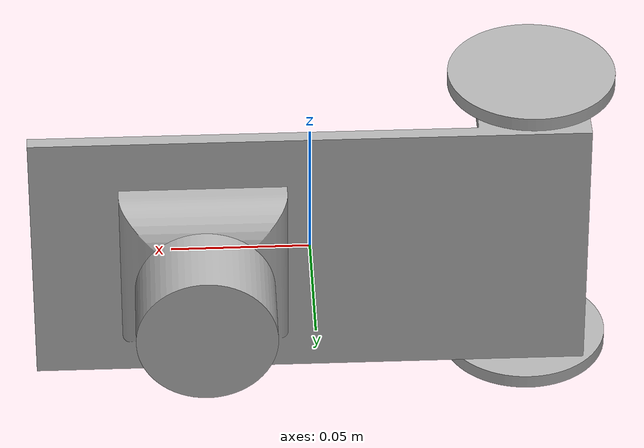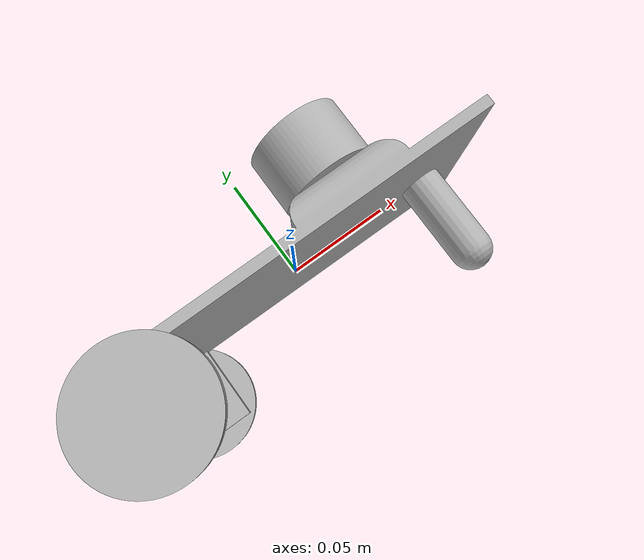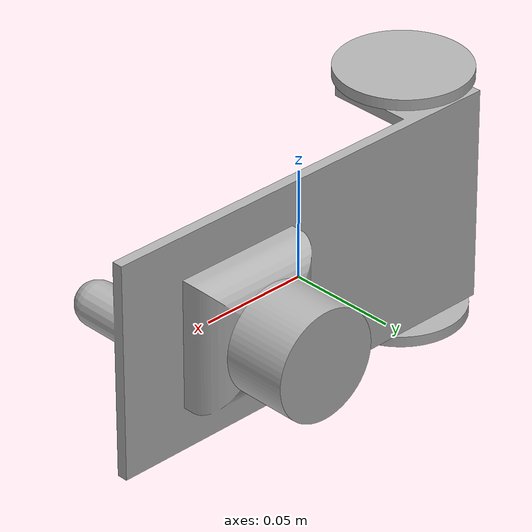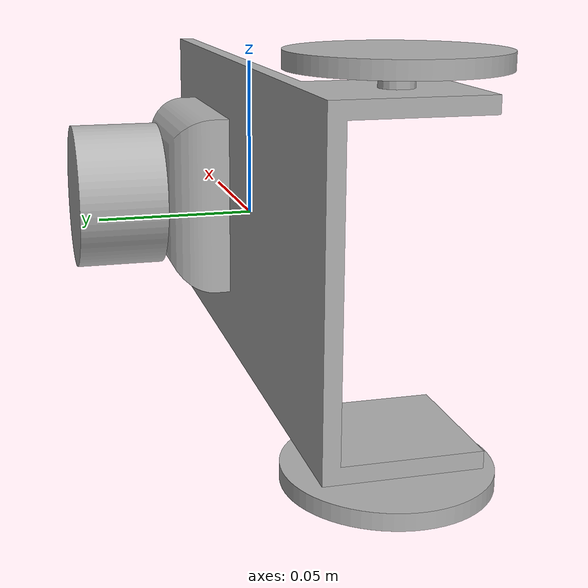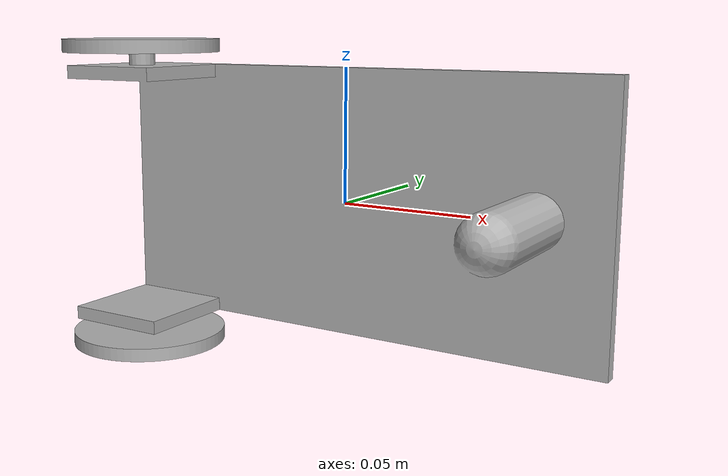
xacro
<?xml version="1.0" ?>
<robot name="TESTPROJECT" xmlns:xacro="http://www.ros.org/wiki/xacro">

<xacro:include filename="$(find TESTPROJECT_description)/urdf/materials.xacro" />
<xacro:include filename="$(find TESTPROJECT_description)/urdf/TESTPROJECT.trans" />
<xacro:include filename="$(find TESTPROJECT_description)/urdf/TESTPROJECT.gazebo" />
<link name="base_link">
  <inertial>
    <origin xyz="0.010833713956967646 0.0022276110718853935 6.125744458320476e-05" rpy="0 0 0"/>
    <mass value="1.5162425271912718"/>
    <inertia ixx="0.001349" iyy="0.005845" izz="0.005018" ixy="-0.000236" iyz="2e-06" ixz="-6e-06"/>
  </inertial>
  <visual>
    <origin xyz="0 0 0" rpy="0 0 0"/>
    <geometry>
      <mesh filename="package://TESTPROJECT_description/meshes/base_link.stl" scale="0.001 0.001 0.001"/>
    </geometry>
    <material name="silver"/>
  </visual>
  <collision>
    <origin xyz="0 0 0" rpy="0 0 0"/>
    <geometry>
      <mesh filename="package://TESTPROJECT_description/meshes/base_link.stl" scale="0.001 0.001 0.001"/>
    </geometry>
  </collision>
</link>

<link name="right_wheel_1">
  <inertial>
    <origin xyz="0.0 -6.938893903907228e-18 0.0025000000000000022" rpy="0 0 0"/>
    <mass value="0.11097676048805946"/>
    <inertia ixx="2.5e-05" iyy="2.5e-05" izz="5e-05" ixy="0.0" iyz="0.0" ixz="-0.0"/>
  </inertial>
  <visual>
    <origin xyz="0.08 0.02 -0.055" rpy="0 0 0"/>
    <geometry>
      <mesh filename="package://TESTPROJECT_description/meshes/right_wheel_1.stl" scale="0.001 0.001 0.001"/>
    </geometry>
    <material name="silver"/>
  </visual>
  <collision>
    <origin xyz="0.08 0.02 -0.055" rpy="0 0 0"/>
    <geometry>
      <mesh filename="package://TESTPROJECT_description/meshes/right_wheel_1.stl" scale="0.001 0.001 0.001"/>
    </geometry>
  </collision>
</link>

<link name="left_wheel_1">
  <inertial>
    <origin xyz="0.0 0.0 -0.0025000000000000022" rpy="0 0 0"/>
    <mass value="0.11097676048805946"/>
    <inertia ixx="2.5e-05" iyy="2.5e-05" izz="5e-05" ixy="0.0" iyz="0.0" ixz="0.0"/>
  </inertial>
  <visual>
    <origin xyz="0.08 0.02 0.055" rpy="0 0 0"/>
    <geometry>
      <mesh filename="package://TESTPROJECT_description/meshes/left_wheel_1.stl" scale="0.001 0.001 0.001"/>
    </geometry>
    <material name="silver"/>
  </visual>
  <collision>
    <origin xyz="0.08 0.02 0.055" rpy="0 0 0"/>
    <geometry>
      <mesh filename="package://TESTPROJECT_description/meshes/left_wheel_1.stl" scale="0.001 0.001 0.001"/>
    </geometry>
  </collision>
</link>

<link name="lidar_1">
  <inertial>
    <origin xyz="1.2310290328082507e-07 0.015 -9.020562075079397e-18" rpy="0 0 0"/>
    <mass value="0.46240316870024756"/>
    <inertia ixx="0.000107" iyy="0.000145" izz="0.000107" ixy="0.0" iyz="-0.0" ixz="0.0"/>
  </inertial>
  <visual>
    <origin xyz="-0.038311 -0.025 0.0" rpy="0 0 0"/>
    <geometry>
      <mesh filename="package://TESTPROJECT_description/meshes/lidar_1.stl" scale="0.001 0.001 0.001"/>
    </geometry>
    <material name="silver"/>
  </visual>
  <collision>
    <origin xyz="-0.038311 -0.025 0.0" rpy="0 0 0"/>
    <geometry>
      <mesh filename="package://TESTPROJECT_description/meshes/lidar_1.stl" scale="0.001 0.001 0.001"/>
    </geometry>
  </collision>
</link>

<joint name="Rev1" type="continuous">
  <origin xyz="-0.08 -0.02 0.055" rpy="0 0 0"/>
  <parent link="base_link"/>
  <child link="right_wheel_1"/>
  <axis xyz="0.0 0.0 1.0"/>
</joint>

<joint name="Rev2" type="continuous">
  <origin xyz="-0.08 -0.02 -0.055" rpy="0 0 0"/>
  <parent link="base_link"/>
  <child link="left_wheel_1"/>
  <axis xyz="0.0 0.0 1.0"/>
</joint>

<joint name="Rigid3" type="fixed">
  <origin xyz="0.038311 0.025 0.0" rpy="0 0 0"/>
  <parent link="base_link"/>
  <child link="lidar_1"/>
</joint>

</robot>

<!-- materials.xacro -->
<robot name="TESTPROJECT" xmlns:xacro="http://www.ros.org/wiki/xacro" >

<material name="silver">
  <color rgba="0.700 0.700 0.700 1.000"/>
</material>

</robot>

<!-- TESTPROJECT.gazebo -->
<robot name="TESTPROJECT" xmlns:xacro="http://www.ros.org/wiki/xacro" >

<xacro:property name="body_color" value="Gazebo/Silver" />

<gazebo>
  <plugin name="control" filename="libgazebo_ros_control.so"/>
</gazebo>
<gazebo reference="base_link">
  <material>${body_color}</material>
  <mu1>3500</mu1>
  <mu2>3500</mu2>
  <selfCollide>true</selfCollide>
  <gravity>true</gravity>
</gazebo>

<gazebo reference="right_wheel_1">
  <material>${body_color}</material>
  <mu1>3500</mu1>
  <mu2>3500</mu2>
  <selfCollide>true</selfCollide>
</gazebo>

<gazebo reference="left_wheel_1">
  <material>${body_color}</material>
  <mu1>3500</mu1>
  <mu2>3500</mu2>
  <selfCollide>true</selfCollide>
</gazebo>

<gazebo reference="lidar_1">
  <material>${body_color}</material>
  <mu1>0.2</mu1>
  <mu2>0.2</mu2>
  <selfCollide>true</selfCollide>
</gazebo>
  <gazebo>
  <plugin name="differential_drive_controller" filename="libgazebo_ros_diff_drive.so">

    <!-- Plugin update rate in Hz -->
    <updateRate>${1000}</updateRate>

    <!-- Name of left joint, defaults to `left_joint` -->
    <leftJoint>Rev2</leftJoint>

    <!-- Name of right joint, defaults to `right_joint` -->
    <rightJoint>Rev1</rightJoint>

    <!-- The distance from the center of one wheel to the other, in meters, defaults to 0.34 m -->
    <wheelSeparation>0.5380</wheelSeparation>

    <!-- Diameter of the wheels, in meters, defaults to 0.15 m -->
    <wheelDiameter>0.2410</wheelDiameter>

    <!-- Wheel acceleration, in rad/s^2, defaults to 0.0 rad/s^2 -->
    <wheelAcceleration>1.0</wheelAcceleration>

    <!-- Maximum torque which the wheels can produce, in Nm, defaults to 5 Nm -->
    <wheelTorque>20</wheelTorque>

    <!-- Topic to receive geometry_msgs/Twist message commands, defaults to `cmd_vel` -->
    <commandTopic>cmd_vel</commandTopic>

    <!-- Topic to publish nav_msgs/Odometry messages, defaults to `odom` -->
    <odometryTopic>odom</odometryTopic>

    <!-- Odometry frame, defaults to `odom` -->
    <odometryFrame>odom</odometryFrame>

    <!-- Robot frame to calculate odometry from, defaults to `base_footprint` -->
    <robotBaseFrame>base_footprint</robotBaseFrame>

    <!-- Odometry source, 0 for ENCODER, 1 for WORLD, defaults to WORLD -->
    <odometrySource>1</odometrySource>

    <!-- Set to true to publish transforms for the wheel links, defaults to false -->
    <publishWheelTF>true</publishWheelTF>

    <!-- Set to true to publish transforms for the odometry, defaults to true -->
    <publishOdom>true</publishOdom>

    <!-- Set to true to publish sensor_msgs/JointState on /joint_states for the wheel joints, defaults to false -->
    <publishWheelJointState>true</publishWheelJointState>

    <!-- Set to true to swap right and left wheels, defaults to true -->
    <legacyMode>false</legacyMode>
  </plugin>
</gazebo>

</robot>
